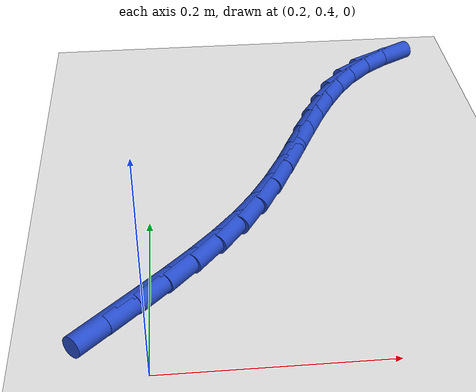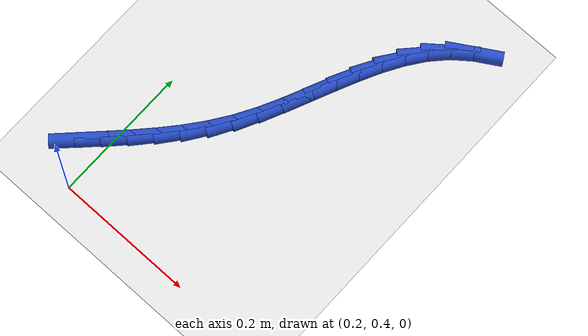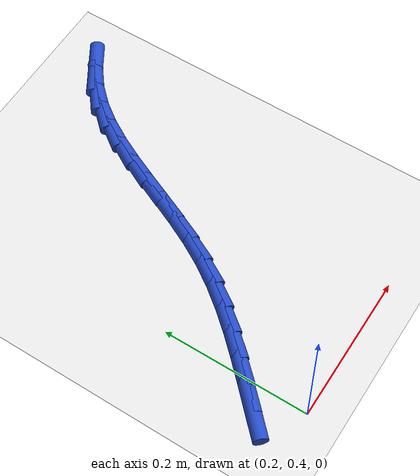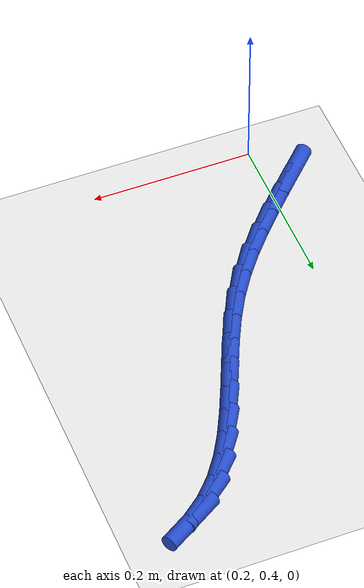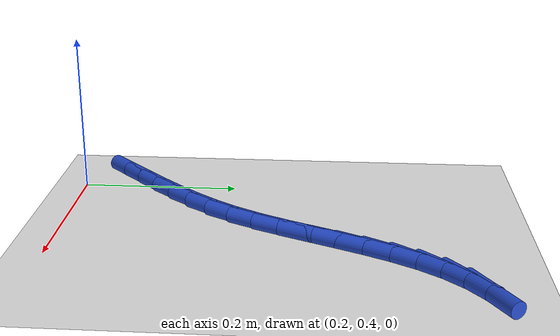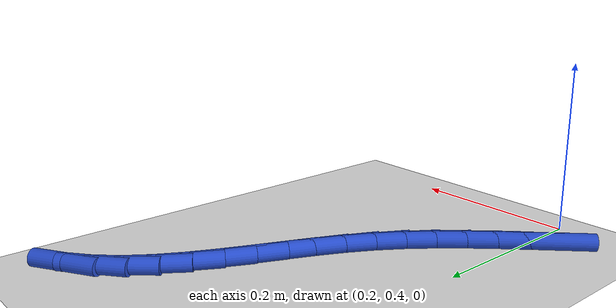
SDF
<sdf version="1.6">
 <world name="default">
  <model name="ground_plane">
   <static>1</static>
   <link name="link">
    <collision name="collision">
     <geometry><plane><normal>0 0 1</normal><size>100 100</size></plane></geometry>
     <surface><friction><ode><mu>100</mu><mu2>50</mu2></ode></friction></surface>
    </collision>
    <visual name="visual">
     <cast_shadows>0</cast_shadows>
     <geometry><plane><normal>0 0 1</normal><size>100 100</size></plane></geometry>
     <material>
      <script><uri>file://media/materials/scripts/gazebo.material</uri><name>Gazebo/WhiteGlow</name></script>
     </material>
    </visual>
   </link>
  </model>
  <model name="line">
   <link name="link_15">
    <pose>0.16723066122405064 0.45552595614483354 0.01 0 1.57 0.7864362148208434</pose>
    <collision name="collision">
     <geometry><cylinder><radius>0.01</radius><length>0.08</length></cylinder></geometry>
    </collision>
    <visual name="visual">
     <material>
      <script><name>Gazebo/Blue</name><uri>file://media/materials/scripts/gazebo.material</uri></script>
     </material>
     <geometry><cylinder><radius>0.01</radius><length>0.08</length></cylinder></geometry>
    </visual>
   </link>
   <link name="link_16">
    <pose>0.19139566520737553 0.47974118131193083 0.01 0 1.57 0.7945009354439476</pose>
    <collision name="collision">
     <geometry><cylinder><radius>0.01</radius><length>0.08</length></cylinder></geometry>
    </collision>
    <visual name="visual">
     <material>
      <script><name>Gazebo/Blue</name><uri>file://media/materials/scripts/gazebo.material</uri></script>
     </material>
     <geometry><cylinder><radius>0.01</radius><length>0.08</length></cylinder></geometry>
    </visual>
   </link>
   <link name="link_17">
    <pose>0.21547232208050202 0.5042602058133835 0.01 0 1.57 0.817338596577386</pose>
    <collision name="collision">
     <geometry><cylinder><radius>0.01</radius><length>0.08</length></cylinder></geometry>
    </collision>
    <visual name="visual">
     <material>
      <script><name>Gazebo/Blue</name><uri>file://media/materials/scripts/gazebo.material</uri></script>
     </material>
     <geometry><cylinder><radius>0.01</radius><length>0.08</length></cylinder></geometry>
    </visual>
   </link>
   <link name="link_18">
    <pose>0.23902662206867667 0.5293693666067275 0.01 0 1.57 0.8550148325637463</pose>
    <collision name="collision">
     <geometry><cylinder><radius>0.01</radius><length>0.08</length></cylinder></geometry>
    </collision>
    <visual name="visual">
     <material>
      <script><name>Gazebo/Blue</name><uri>file://media/materials/scripts/gazebo.material</uri></script>
     </material>
     <geometry><cylinder><radius>0.01</radius><length>0.08</length></cylinder></geometry>
    </visual>
   </link>
   <link name="link_19">
    <pose>0.26162455539714624 0.5553550006494993 0.01 0 1.57 0.9076428613577736</pose>
    <collision name="collision">
     <geometry><cylinder><radius>0.01</radius><length>0.08</length></cylinder></geometry>
    </collision>
    <visual name="visual">
     <material>
      <script><name>Gazebo/Blue</name><uri>file://media/materials/scripts/gazebo.material</uri></script>
     </material>
     <geometry><cylinder><radius>0.01</radius><length>0.08</length></cylinder></geometry>
    </visual>
   </link>
   <link name="link_20">
    <pose>0.28283211229115746 0.582503444899235 0.01 0 1.57 0.975132216110441</pose>
    <collision name="collision">
     <geometry><cylinder><radius>0.01</radius><length>0.08</length></cylinder></geometry>
    </collision>
    <visual name="visual">
     <material>
      <script><name>Gazebo/Blue</name><uri>file://media/materials/scripts/gazebo.material</uri></script>
     </material>
     <geometry><cylinder><radius>0.01</radius><length>0.08</length></cylinder></geometry>
    </visual>
   </link>
   <link name="link_21">
    <pose>0.3022152829759568 0.6111010363134706 0.01 0 1.57 1.051955359036336</pose>
    <collision name="collision">
     <geometry><cylinder><radius>0.01</radius><length>0.08</length></cylinder></geometry>
    </collision>
    <visual name="visual">
     <material>
      <script><name>Gazebo/Blue</name><uri>file://media/materials/scripts/gazebo.material</uri></script>
     </material>
     <geometry><cylinder><radius>0.01</radius><length>0.08</length></cylinder></geometry>
    </visual>
   </link>
   <link name="link_22">
    <pose>0.3194728886160618 0.6413232511368161 0.01 0 1.57 1.111703992971607</pose>
    <collision name="collision">
     <geometry><cylinder><radius>0.01</radius><length>0.08</length></cylinder></geometry>
    </collision>
    <visual name="visual">
     <material>
      <script><name>Gazebo/Blue</name><uri>file://media/materials/scripts/gazebo.material</uri></script>
     </material>
     <geometry><cylinder><radius>0.01</radius><length>0.08</length></cylinder></geometry>
    </visual>
   </link>
   <link name="link_23">
    <pose>0.3350105320771921 0.6727556855474687 0.01 0 1.57 1.1468354153574507</pose>
    <collision name="collision">
     <geometry><cylinder><radius>0.01</radius><length>0.08</length></cylinder></geometry>
    </collision>
    <visual name="visual">
     <material>
      <script><name>Gazebo/Blue</name><uri>file://media/materials/scripts/gazebo.material</uri></script>
     </material>
     <geometry><cylinder><radius>0.01</radius><length>0.08</length></cylinder></geometry>
    </visual>
   </link>
   <link name="link_24">
    <pose>0.34946796656684637 0.7047885138289672 0.01 0 1.57 1.1582037416370465</pose>
    <collision name="collision">
     <geometry><cylinder><radius>0.01</radius><length>0.08</length></cylinder></geometry>
    </collision>
    <visual name="visual">
     <material>
      <script><name>Gazebo/Blue</name><uri>file://media/materials/scripts/gazebo.material</uri></script>
     </material>
     <geometry><cylinder><radius>0.01</radius><length>0.08</length></cylinder></geometry>
    </visual>
   </link>
   <link name="link_25">
    <pose>0.3634850969562743 0.7368117836862714 0.01 0 1.57 1.1456927576206761</pose>
    <collision name="collision">
     <geometry><cylinder><radius>0.01</radius><length>0.08</length></cylinder></geometry>
    </collision>
    <visual name="visual">
     <material>
      <script><name>Gazebo/Blue</name><uri>file://media/materials/scripts/gazebo.material</uri></script>
     </material>
     <geometry><cylinder><radius>0.01</radius><length>0.08</length></cylinder></geometry>
    </visual>
   </link>
   <link name="link_26">
    <pose>0.3777018281167254 0.7682155428243408 0.01 0 1.57 1.1079685923999083</pose>
    <collision name="collision">
     <geometry><cylinder><radius>0.01</radius><length>0.08</length></cylinder></geometry>
    </collision>
    <visual name="visual">
     <material>
      <script><name>Gazebo/Blue</name><uri>file://media/materials/scripts/gazebo.material</uri></script>
     </material>
     <geometry><cylinder><radius>0.01</radius><length>0.08</length></cylinder></geometry>
    </visual>
   </link>
   <link name="link_27">
    <pose>0.39275806491944937 0.7983898389481353 0.01 0 1.57 1.042538447161997</pose>
    <collision name="collision">
     <geometry><cylinder><radius>0.01</radius><length>0.08</length></cylinder></geometry>
    </collision>
    <visual name="visual">
     <material>
      <script><name>Gazebo/Blue</name><uri>file://media/materials/scripts/gazebo.material</uri></script>
     </material>
     <geometry><cylinder><radius>0.01</radius><length>0.08</length></cylinder></geometry>
    </visual>
   </link>
   <link name="link_28">
    <pose>0.4092937122356956 0.826724719762614 0.01 0 1.57 0.9463308913781545</pose>
    <collision name="collision">
     <geometry><cylinder><radius>0.01</radius><length>0.08</length></cylinder></geometry>
    </collision>
    <visual name="visual">
     <material>
      <script><name>Gazebo/Blue</name><uri>file://media/materials/scripts/gazebo.material</uri></script>
     </material>
     <geometry><cylinder><radius>0.01</radius><length>0.08</length></cylinder></geometry>
    </visual>
   </link>
   <link name="link_29">
    <pose>0.42794867493671357 0.852610232972737 0.01 0 1.57 0.8173363148061481</pose>
    <collision name="collision">
     <geometry><cylinder><radius>0.01</radius><length>0.08</length></cylinder></geometry>
    </collision>
    <visual name="visual">
     <material>
      <script><name>Gazebo/Blue</name><uri>file://media/materials/scripts/gazebo.material</uri></script>
     </material>
     <geometry><cylinder><radius>0.01</radius><length>0.08</length></cylinder></geometry>
    </visual>
   </link>
   <link name="link_30">
    <pose>0.4493621611898803 0.8754371567631504 0.01 0 1.57 0.6704236372190755</pose>
    <collision name="collision">
     <geometry><cylinder><radius>0.01</radius><length>0.08</length></cylinder></geometry>
    </collision>
    <visual name="visual">
     <material>
      <script><name>Gazebo/Blue</name><uri>file://media/materials/scripts/gazebo.material</uri></script>
     </material>
     <geometry><cylinder><radius>0.01</radius><length>0.08</length></cylinder></geometry>
    </visual>
   </link>
   <link name="link_31">
    <pose>0.47389381687186866 0.894889384632855 0.01 0 1.57 0.5436318401502175</pose>
    <collision name="collision">
     <geometry><cylinder><radius>0.01</radius><length>0.08</length></cylinder></geometry>
    </collision>
    <visual name="visual">
     <material>
      <script><name>Gazebo/Blue</name><uri>file://media/materials/scripts/gazebo.material</uri></script>
     </material>
     <geometry><cylinder><radius>0.01</radius><length>0.08</length></cylinder></geometry>
    </visual>
   </link>
  </model>
 </world>
</sdf>
